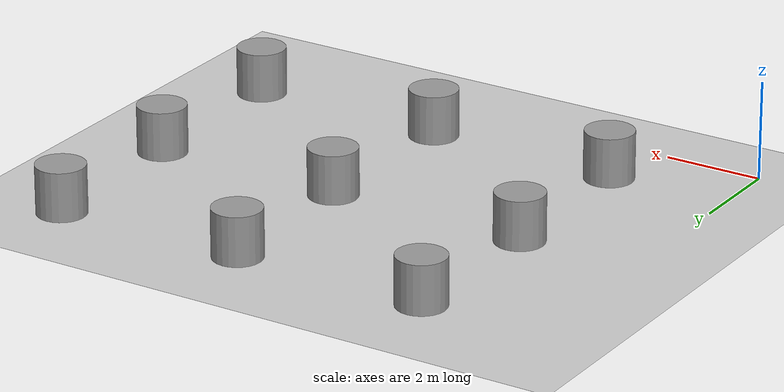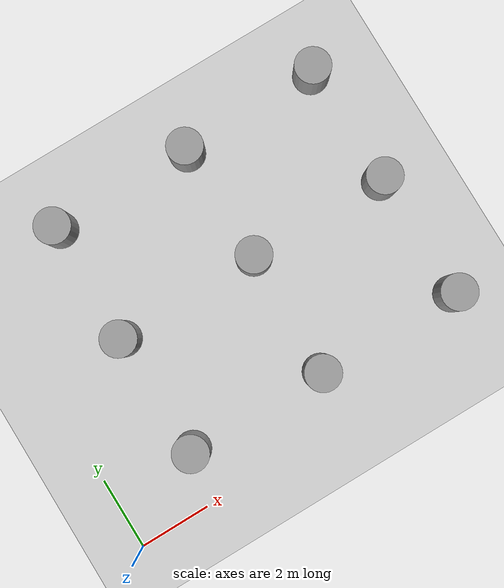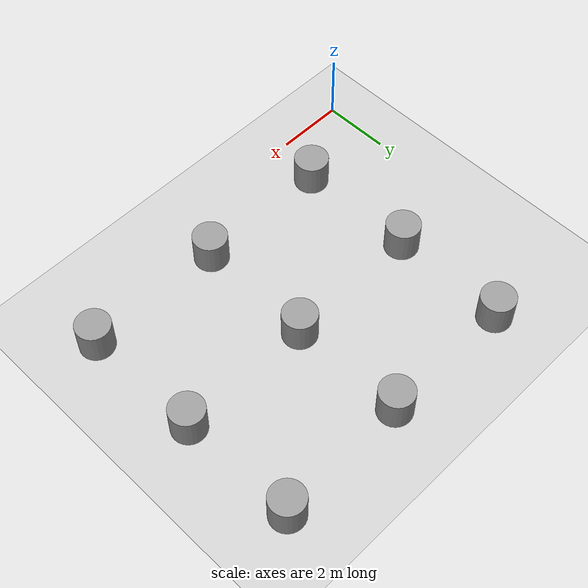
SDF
<sdf version="1.6">
 <world name="default">
  <light name="sun" type="directional">
   <pose>0 0 10 0 -0 0</pose>
   <diffuse>0.8 0.8 0.8 1</diffuse>
   <specular>0.2 0.2 0.2 1</specular>
   <attenuation>
    <range>1000</range>
    <constant>0.9</constant>
    <linear>0.01</linear>
    <quadratic>0.001</quadratic>
   </attenuation>
   <direction>-0.5 0.1 -0.9</direction>
  </light>
  <model name="ground_plane">
   <static>1</static>
   <link name="link">
    <collision name="collision">
     <geometry><plane><normal>0 0 1</normal><size>100 100</size></plane></geometry>
     <surface>
      <contact><collide_bitmask>65535</collide_bitmask></contact>
      <friction><ode><mu>100</mu><mu2>50</mu2></ode></friction>
     </surface>
    </collision>
    <visual name="visual">
     <cast_shadows>0</cast_shadows>
     <geometry><plane><normal>0 0 1</normal><size>100 100</size></plane></geometry>
     <material>
      <script><uri>file://media/materials/scripts/gazebo.material</uri><name>Gazebo/Grey</name></script>
     </material>
    </visual>
   </link>
  </model>
  <gravity>0 0 -9.8</gravity>
  <magnetic_field>6e-06 2.3e-05 -4.2e-05</magnetic_field>
  <atmosphere type="adiabatic"/>
  <physics name="default_physics" default="0" type="ode">
   <max_step_size>0.001</max_step_size>
   <real_time_factor>1</real_time_factor>
   <real_time_update_rate>1000</real_time_update_rate>
  </physics>
  <scene><ambient>0.4 0.4 0.4 1</ambient><background>0.7 0.7 0.7 1</background><shadows>1</shadows></scene>
  <audio><device>default</device></audio>
  <spherical_coordinates>
   <surface_model>EARTH_WGS84</surface_model>
   <latitude_deg>0</latitude_deg>
   <longitude_deg>0</longitude_deg>
   <elevation>0</elevation>
   <heading_deg>0</heading_deg>
  </spherical_coordinates>
  <model name="unit_cylinder">
   <pose>2.46552 1.50285 0.499993 -3e-06 -4e-06 -0</pose>
   <link name="link">
    <inertial>
     <mass>1</mass>
     <inertia><ixx>0.145833</ixx><ixy>0</ixy><ixz>0</ixz><iyy>0.145833</iyy><iyz>0</iyz><izz>0.125</izz></inertia>
    </inertial>
    <collision name="collision">
     <geometry><cylinder><radius>0.5</radius><length>1</length></cylinder></geometry>
    </collision>
    <visual name="visual">
     <geometry><cylinder><radius>0.5</radius><length>1</length></cylinder></geometry>
     <material>
      <script><name>Gazebo/Grey</name><uri>file://media/materials/scripts/gazebo.material</uri></script>
     </material>
    </visual>
   </link>
  </model>
  <model name="unit_cylinder_0">
   <pose>2.39133 4.98227 0.499997 3e-06 4e-06 -0</pose>
   <link name="link">
    <inertial>
     <mass>1</mass>
     <inertia><ixx>0.145833</ixx><ixy>0</ixy><ixz>0</ixz><iyy>0.145833</iyy><iyz>0</iyz><izz>0.125</izz></inertia>
    </inertial>
    <collision name="collision">
     <geometry><cylinder><radius>0.5</radius><length>1</length></cylinder></geometry>
    </collision>
    <visual name="visual">
     <geometry><cylinder><radius>0.5</radius><length>1</length></cylinder></geometry>
     <material>
      <script><name>Gazebo/Grey</name><uri>file://media/materials/scripts/gazebo.material</uri></script>
     </material>
    </visual>
   </link>
  </model>
  <model name="unit_cylinder_1">
   <pose>6.43858 1.49488 0.499993 -3e-06 -4e-06 -0</pose>
   <link name="link">
    <inertial>
     <mass>1</mass>
     <inertia><ixx>0.145833</ixx><ixy>0</ixy><ixz>0</ixz><iyy>0.145833</iyy><iyz>0</iyz><izz>0.125</izz></inertia>
    </inertial>
    <collision name="collision">
     <geometry><cylinder><radius>0.5</radius><length>1</length></cylinder></geometry>
    </collision>
    <visual name="visual">
     <geometry><cylinder><radius>0.5</radius><length>1</length></cylinder></geometry>
     <material>
      <script><name>Gazebo/Grey</name><uri>file://media/materials/scripts/gazebo.material</uri></script>
     </material>
    </visual>
   </link>
  </model>
  <model name="unit_cylinder_2">
   <pose>10.5304 1.45072 0.499993 -3e-06 -4e-06 -0</pose>
   <link name="link">
    <inertial>
     <mass>1</mass>
     <inertia><ixx>0.145833</ixx><ixy>0</ixy><ixz>0</ixz><iyy>0.145833</iyy><iyz>0</iyz><izz>0.125</izz></inertia>
    </inertial>
    <collision name="collision">
     <geometry><cylinder><radius>0.5</radius><length>1</length></cylinder></geometry>
    </collision>
    <visual name="visual">
     <geometry><cylinder><radius>0.5</radius><length>1</length></cylinder></geometry>
     <material>
      <script><name>Gazebo/Grey</name><uri>file://media/materials/scripts/gazebo.material</uri></script>
     </material>
    </visual>
   </link>
  </model>
  <model name="unit_cylinder_3">
   <pose>6.50042 5.02827 0.499997 3e-06 4e-06 -0</pose>
   <link name="link">
    <inertial>
     <mass>1</mass>
     <inertia><ixx>0.145833</ixx><ixy>0</ixy><ixz>0</ixz><iyy>0.145833</iyy><iyz>0</iyz><izz>0.125</izz></inertia>
    </inertial>
    <collision name="collision">
     <geometry><cylinder><radius>0.5</radius><length>1</length></cylinder></geometry>
    </collision>
    <visual name="visual">
     <geometry><cylinder><radius>0.5</radius><length>1</length></cylinder></geometry>
     <material>
      <script><name>Gazebo/Grey</name><uri>file://media/materials/scripts/gazebo.material</uri></script>
     </material>
    </visual>
   </link>
  </model>
  <model name="unit_cylinder_4">
   <pose>10.4721 5.01715 0.499997 3e-06 4e-06 -0</pose>
   <link name="link">
    <inertial>
     <mass>1</mass>
     <inertia><ixx>0.145833</ixx><ixy>0</ixy><ixz>0</ixz><iyy>0.145833</iyy><iyz>0</iyz><izz>0.125</izz></inertia>
    </inertial>
    <collision name="collision">
     <geometry><cylinder><radius>0.5</radius><length>1</length></cylinder></geometry>
    </collision>
    <visual name="visual">
     <geometry><cylinder><radius>0.5</radius><length>1</length></cylinder></geometry>
     <material>
      <script><name>Gazebo/Grey</name><uri>file://media/materials/scripts/gazebo.material</uri></script>
     </material>
    </visual>
   </link>
  </model>
  <model name="unit_cylinder_5">
   <pose>2.4295 8.37947 0.499993 -3e-06 -4e-06 -0</pose>
   <link name="link">
    <inertial>
     <mass>1</mass>
     <inertia><ixx>0.145833</ixx><ixy>0</ixy><ixz>0</ixz><iyy>0.145833</iyy><iyz>0</iyz><izz>0.125</izz></inertia>
    </inertial>
    <collision name="collision">
     <geometry><cylinder><radius>0.5</radius><length>1</length></cylinder></geometry>
    </collision>
    <visual name="visual">
     <geometry><cylinder><radius>0.5</radius><length>1</length></cylinder></geometry>
     <material>
      <script><name>Gazebo/Grey</name><uri>file://media/materials/scripts/gazebo.material</uri></script>
     </material>
    </visual>
   </link>
  </model>
  <model name="unit_cylinder_6">
   <pose>6.43133 8.38113 0.499997 3e-06 4e-06 -0</pose>
   <link name="link">
    <inertial>
     <mass>1</mass>
     <inertia><ixx>0.145833</ixx><ixy>0</ixy><ixz>0</ixz><iyy>0.145833</iyy><iyz>0</iyz><izz>0.125</izz></inertia>
    </inertial>
    <collision name="collision">
     <geometry><cylinder><radius>0.5</radius><length>1</length></cylinder></geometry>
    </collision>
    <visual name="visual">
     <geometry><cylinder><radius>0.5</radius><length>1</length></cylinder></geometry>
     <material>
      <script><name>Gazebo/Grey</name><uri>file://media/materials/scripts/gazebo.material</uri></script>
     </material>
    </visual>
   </link>
  </model>
  <model name="unit_cylinder_7">
   <pose>10.3886 8.45985 0.499997 3e-06 4e-06 -0</pose>
   <link name="link">
    <inertial>
     <mass>1</mass>
     <inertia><ixx>0.145833</ixx><ixy>0</ixy><ixz>0</ixz><iyy>0.145833</iyy><iyz>0</iyz><izz>0.125</izz></inertia>
    </inertial>
    <collision name="collision">
     <geometry><cylinder><radius>0.5</radius><length>1</length></cylinder></geometry>
    </collision>
    <visual name="visual">
     <geometry><cylinder><radius>0.5</radius><length>1</length></cylinder></geometry>
     <material>
      <script><name>Gazebo/Grey</name><uri>file://media/materials/scripts/gazebo.material</uri></script>
     </material>
    </visual>
   </link>
  </model>
 </world>
</sdf>
